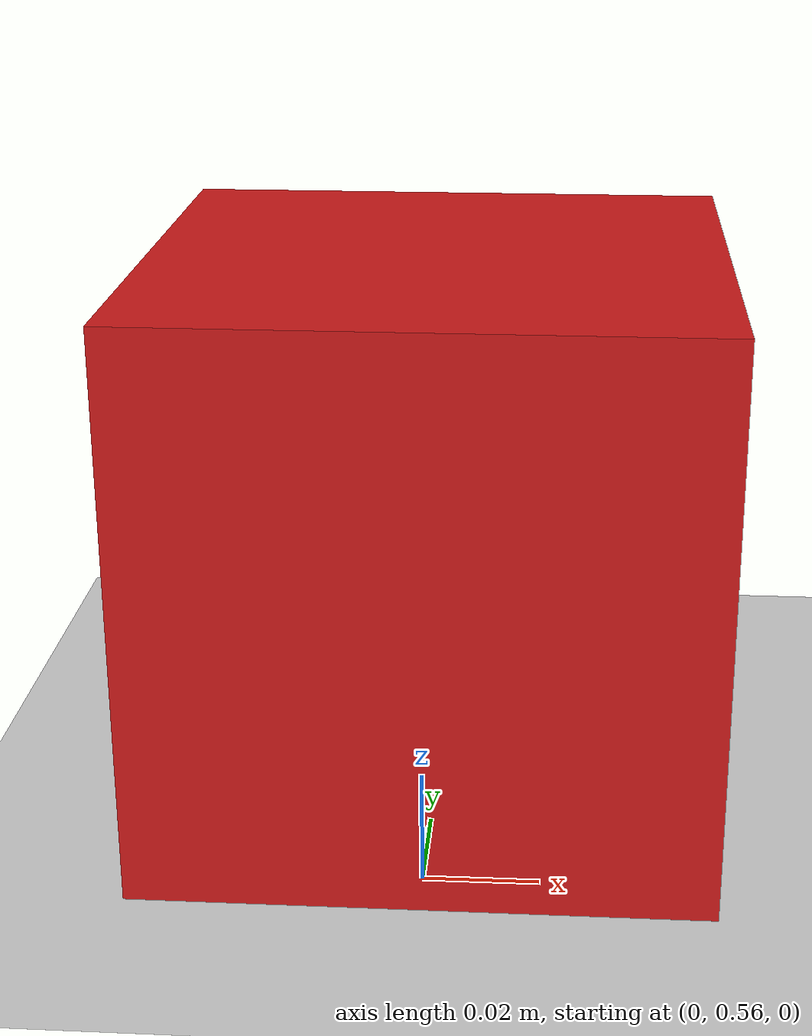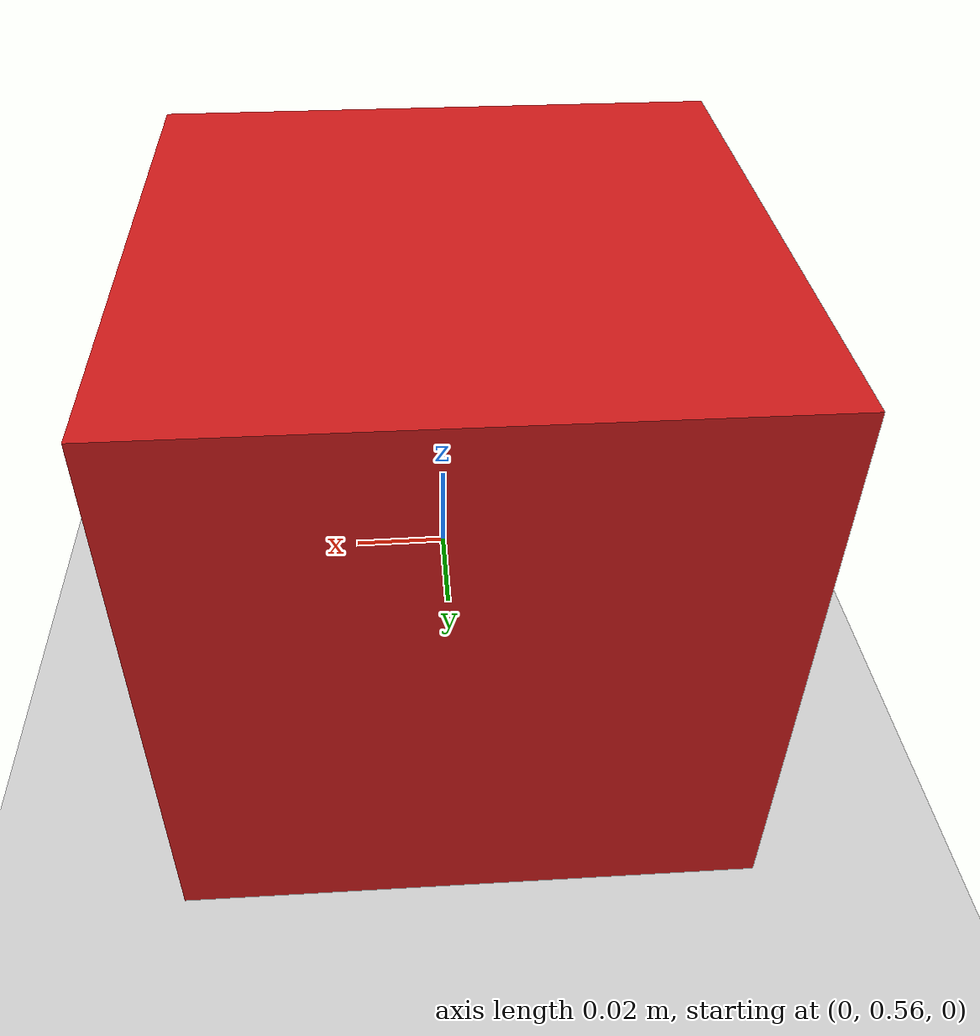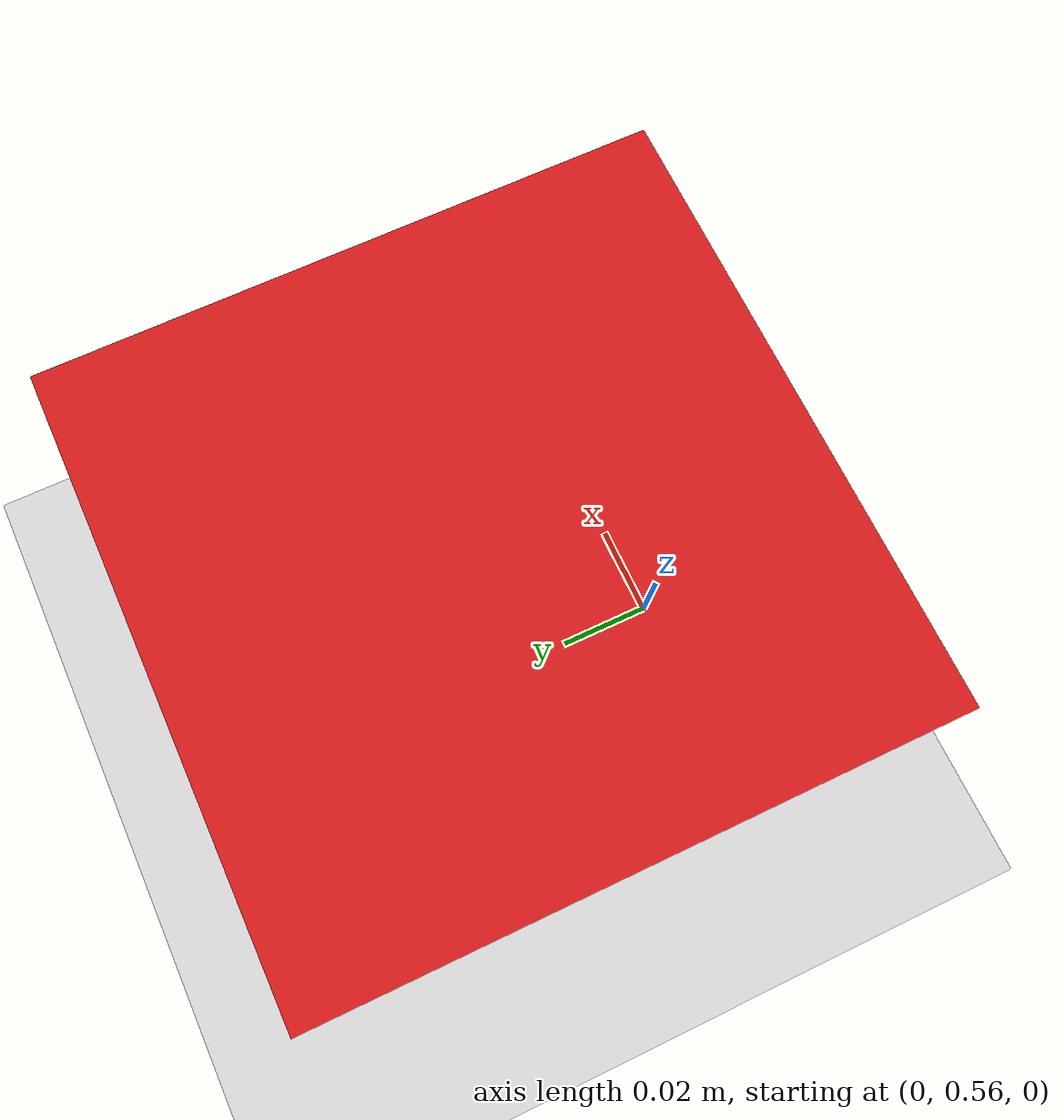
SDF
<?xml version="1.0"?>
<sdf version="1.10">
  <world name="default">

    <physics name="1ms" type="ignored">
      <max_step_size>0.001</max_step_size>
      <real_time_factor>1.0</real_time_factor>
    </physics>
    <plugin filename="gz-sim-physics-system"
            name="gz::sim::systems::Physics"/>
    <plugin filename="gz-sim-user-commands-system"
            name="gz::sim::systems::UserCommands"/>
    <plugin filename="gz-sim-scene-broadcaster-system"
            name="gz::sim::systems::SceneBroadcaster"/>
    <plugin filename="gz-sim-sensors-system"
            name="gz::sim::systems::Sensors">
      <render_engine>ogre2</render_engine>
    </plugin>

    <light type="directional" name="sun">
      <cast_shadows>true</cast_shadows>
      <pose>0 0 10 0 0 0</pose>
      <diffuse>0.8 0.8 0.8 1</diffuse>
      <specular>0.2 0.2 0.2 1</specular>
      <direction>-0.5 0.1 -0.9</direction>
    </light>

    <model name="ground_plane">
      <static>true</static>
      <link name="link">
        <collision name="collision">
          <geometry><plane>
            <normal>0 0 1</normal>
            <size>10 10</size>
          </plane></geometry>
        </collision>
        <visual name="visual">
          <geometry><plane>
            <normal>0 0 1</normal>
            <size>10 10</size>
          </plane></geometry>
          <material>
            <ambient>0.8 0.8 0.8 1</ambient>
            <diffuse>0.8 0.8 0.8 1</diffuse>
            <specular>0.8 0.8 0.8 1</specular>
          </material>
        </visual>
      </link>
    </model>

    <model name="push_box">
      <pose>0 0.6 0.05 0 0 0</pose>
      <link name="link">
        <inertial>
          <mass>0.5</mass>
          <inertia>
            <ixx>0.000833</ixx><ixy>0</ixy><ixz>0</ixz>
            <iyy>0.000833</iyy><iyz>0</iyz>
            <izz>0.000833</izz>
          </inertia>
        </inertial>
        <collision name="collision">
          <geometry><box><size>0.1 0.1 0.1</size></box></geometry>
          <surface><friction><ode>
            <mu>0.5</mu><mu2>0.5</mu2>
          </ode></friction></surface>
        </collision>
        <visual name="visual">
          <geometry><box><size>0.1 0.1 0.1</size></box></geometry>
          <material>
            <ambient>0.8 0.1 0.1 1</ambient>
            <diffuse>0.8 0.1 0.1 1</diffuse>
            <specular>0.2 0.2 0.2 1</specular>
          </material>
        </visual>
      </link>
    </model>

  </world>
</sdf>
